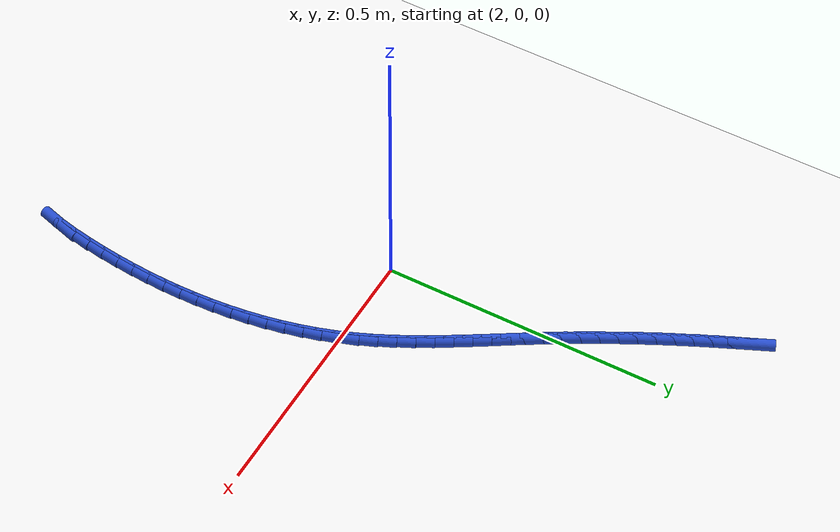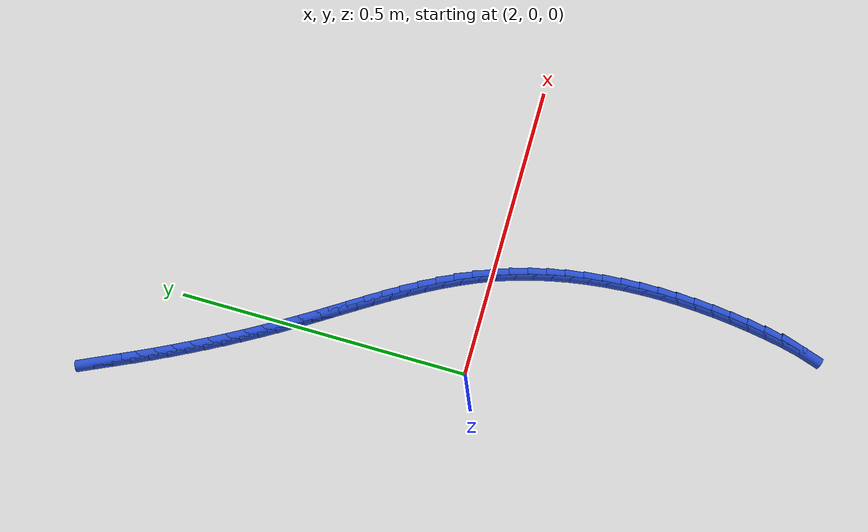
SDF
<sdf version="1.6">
 <world name="default">
  <model name="ground_plane">
   <static>1</static>
   <link name="link">
    <collision name="collision">
     <geometry><plane><normal>0 0 1</normal><size>100 100</size></plane></geometry>
     <surface><friction><ode><mu>100</mu><mu2>50</mu2></ode></friction></surface>
    </collision>
    <visual name="visual">
     <cast_shadows>0</cast_shadows>
     <geometry><plane><normal>0 0 1</normal><size>100 100</size></plane></geometry>
     <material>
      <script><uri>file://media/materials/scripts/gazebo.material</uri><name>Gazebo/WhiteGlow</name></script>
     </material>
    </visual>
   </link>
  </model>
  <model name="line">
   <link name="link_101">
    <pose>1.8529128987303833 0.6023524551765541 0.01 0 1.57 -1.141364116093518</pose>
    <collision name="collision">
     <geometry><cylinder><radius>0.01</radius><length>0.08</length></cylinder></geometry>
    </collision>
    <visual name="visual">
     <material>
      <script><name>Gazebo/Blue</name><uri>file://media/materials/scripts/gazebo.material</uri></script>
     </material>
     <geometry><cylinder><radius>0.01</radius><length>0.08</length></cylinder></geometry>
    </visual>
   </link>
   <link name="link_102">
    <pose>1.865972246120394 0.5738344859261233 0.01 0 1.57 -1.1388401700489124</pose>
    <collision name="collision">
     <geometry><cylinder><radius>0.01</radius><length>0.08</length></cylinder></geometry>
    </collision>
    <visual name="visual">
     <material>
      <script><name>Gazebo/Blue</name><uri>file://media/materials/scripts/gazebo.material</uri></script>
     </material>
     <geometry><cylinder><radius>0.01</radius><length>0.08</length></cylinder></geometry>
    </visual>
   </link>
   <link name="link_103">
    <pose>1.879097686817881 0.5453622430813385 0.01 0 1.57 -1.1290095653424908</pose>
    <collision name="collision">
     <geometry><cylinder><radius>0.01</radius><length>0.08</length></cylinder></geometry>
    </collision>
    <visual name="visual">
     <material>
      <script><name>Gazebo/Blue</name><uri>file://media/materials/scripts/gazebo.material</uri></script>
     </material>
     <geometry><cylinder><radius>0.01</radius><length>0.08</length></cylinder></geometry>
    </visual>
   </link>
   <link name="link_104">
    <pose>1.8924850723764892 0.5170570160560193 0.01 0 1.57 -1.1171066864794945</pose>
    <collision name="collision">
     <geometry><cylinder><radius>0.01</radius><length>0.08</length></cylinder></geometry>
    </collision>
    <visual name="visual">
     <material>
      <script><name>Gazebo/Blue</name><uri>file://media/materials/scripts/gazebo.material</uri></script>
     </material>
     <geometry><cylinder><radius>0.01</radius><length>0.08</length></cylinder></geometry>
    </visual>
   </link>
   <link name="link_105">
    <pose>1.9061917961281296 0.48894722150198777 0.01 0 1.57 -1.1051152801172501</pose>
    <collision name="collision">
     <geometry><cylinder><radius>0.01</radius><length>0.08</length></cylinder></geometry>
    </collision>
    <visual name="visual">
     <material>
      <script><name>Gazebo/Blue</name><uri>file://media/materials/scripts/gazebo.material</uri></script>
     </material>
     <geometry><cylinder><radius>0.01</radius><length>0.08</length></cylinder></geometry>
    </visual>
   </link>
   <link name="link_106">
    <pose>1.9202232504300774 0.46102639570007026 0.01 0 1.57 -1.0930515715977234</pose>
    <collision name="collision">
     <geometry><cylinder><radius>0.01</radius><length>0.08</length></cylinder></geometry>
    </collision>
    <visual name="visual">
     <material>
      <script><name>Gazebo/Blue</name><uri>file://media/materials/scripts/gazebo.material</uri></script>
     </material>
     <geometry><cylinder><radius>0.01</radius><length>0.08</length></cylinder></geometry>
    </visual>
   </link>
   <link name="link_107">
    <pose>1.9345847346326552 0.43328801254539867 0.01 0 1.57 -1.0809285110218767</pose>
    <collision name="collision">
     <geometry><cylinder><radius>0.01</radius><length>0.08</length></cylinder></geometry>
    </collision>
    <visual name="visual">
     <material>
      <script><name>Gazebo/Blue</name><uri>file://media/materials/scripts/gazebo.material</uri></script>
     </material>
     <geometry><cylinder><radius>0.01</radius><length>0.08</length></cylinder></geometry>
    </visual>
   </link>
   <link name="link_108">
    <pose>1.9492815480861878 0.40572554593310467 0.01 0 1.57 -1.068759253756185</pose>
    <collision name="collision">
     <geometry><cylinder><radius>0.01</radius><length>0.08</length></cylinder></geometry>
    </collision>
    <visual name="visual">
     <material>
      <script><name>Gazebo/Blue</name><uri>file://media/materials/scripts/gazebo.material</uri></script>
     </material>
     <geometry><cylinder><radius>0.01</radius><length>0.08</length></cylinder></geometry>
    </visual>
   </link>
   <link name="link_109">
    <pose>1.9643189901409983 0.3783324697583209 0.01 0 1.57 -1.0565571017413697</pose>
    <collision name="collision">
     <geometry><cylinder><radius>0.01</radius><length>0.08</length></cylinder></geometry>
    </collision>
    <visual name="visual">
     <material>
      <script><name>Gazebo/Blue</name><uri>file://media/materials/scripts/gazebo.material</uri></script>
     </material>
     <geometry><cylinder><radius>0.01</radius><length>0.08</length></cylinder></geometry>
    </visual>
   </link>
   <link name="link_110">
    <pose>1.9797023601474097 0.3511022579161794 0.01 0 1.57 -1.0443354432863359</pose>
    <collision name="collision">
     <geometry><cylinder><radius>0.01</radius><length>0.08</length></cylinder></geometry>
    </collision>
    <visual name="visual">
     <material>
      <script><name>Gazebo/Blue</name><uri>file://media/materials/scripts/gazebo.material</uri></script>
     </material>
     <geometry><cylinder><radius>0.01</radius><length>0.08</length></cylinder></geometry>
    </visual>
   </link>
   <link name="link_111">
    <pose>1.9954369574557476 0.32402838430181186 0.01 0 1.57 -1.0321076920001682</pose>
    <collision name="collision">
     <geometry><cylinder><radius>0.01</radius><length>0.08</length></cylinder></geometry>
    </collision>
    <visual name="visual">
     <material>
      <script><name>Gazebo/Blue</name><uri>file://media/materials/scripts/gazebo.material</uri></script>
     </material>
     <geometry><cylinder><radius>0.01</radius><length>0.08</length></cylinder></geometry>
    </visual>
   </link>
   <link name="link_112">
    <pose>2.0115280814163343 0.29710432281035 0.01 0 1.57 -1.020448550593419</pose>
    <collision name="collision">
     <geometry><cylinder><radius>0.01</radius><length>0.08</length></cylinder></geometry>
    </collision>
    <visual name="visual">
     <material>
      <script><name>Gazebo/Blue</name><uri>file://media/materials/scripts/gazebo.material</uri></script>
     </material>
     <geometry><cylinder><radius>0.01</radius><length>0.08</length></cylinder></geometry>
    </visual>
   </link>
   <link name="link_113">
    <pose>2.027964035992118 0.27031751057428 0.01 0 1.57 -1.0129894860063706</pose>
    <collision name="collision">
     <geometry><cylinder><radius>0.01</radius><length>0.08</length></cylinder></geometry>
    </collision>
    <visual name="visual">
     <material>
      <script><name>Gazebo/Blue</name><uri>file://media/materials/scripts/gazebo.material</uri></script>
     </material>
     <geometry><cylinder><radius>0.01</radius><length>0.08</length></cylinder></geometry>
    </visual>
   </link>
   <link name="link_114">
    <pose>2.0446229191994627 0.24361623956704379 0.01 0 1.57 -1.0111452794310627</pose>
    <collision name="collision">
     <geometry><cylinder><radius>0.01</radius><length>0.08</length></cylinder></geometry>
    </collision>
    <visual name="visual">
     <material>
      <script><name>Gazebo/Blue</name><uri>file://media/materials/scripts/gazebo.material</uri></script>
     </material>
     <geometry><cylinder><radius>0.01</radius><length>0.08</length></cylinder></geometry>
    </visual>
   </link>
   <link name="link_115">
    <pose>2.061338876639845 0.2169331898615979 0.01 0 1.57 -1.0149065328973785</pose>
    <collision name="collision">
     <geometry><cylinder><radius>0.01</radius><length>0.08</length></cylinder></geometry>
    </collision>
    <visual name="visual">
     <material>
      <script><name>Gazebo/Blue</name><uri>file://media/materials/scripts/gazebo.material</uri></script>
     </material>
     <geometry><cylinder><radius>0.01</radius><length>0.08</length></cylinder></geometry>
    </visual>
   </link>
   <link name="link_116">
    <pose>2.077945939758117 0.19020100098245957 0.01 0 1.57 -1.0242923384345723</pose>
    <collision name="collision">
     <geometry><cylinder><radius>0.01</radius><length>0.08</length></cylinder></geometry>
    </collision>
    <visual name="visual">
     <material>
      <script><name>Gazebo/Blue</name><uri>file://media/materials/scripts/gazebo.material</uri></script>
     </material>
     <geometry><cylinder><radius>0.01</radius><length>0.08</length></cylinder></geometry>
    </visual>
   </link>
   <link name="link_117">
    <pose>2.0942781399991306 0.1633523124541449 0.01 0 1.57 -1.039350717036252</pose>
    <collision name="collision">
     <geometry><cylinder><radius>0.01</radius><length>0.08</length></cylinder></geometry>
    </collision>
    <visual name="visual">
     <material>
      <script><name>Gazebo/Blue</name><uri>file://media/materials/scripts/gazebo.material</uri></script>
     </material>
     <geometry><cylinder><radius>0.01</radius><length>0.08</length></cylinder></geometry>
    </visual>
   </link>
   <link name="link_118">
    <pose>2.1101695088077372 0.1363197638011704 0.01 0 1.57 -1.060150149255341</pose>
    <collision name="collision">
     <geometry><cylinder><radius>0.01</radius><length>0.08</length></cylinder></geometry>
    </collision>
    <visual name="visual">
     <material>
      <script><name>Gazebo/Blue</name><uri>file://media/materials/scripts/gazebo.material</uri></script>
     </material>
     <geometry><cylinder><radius>0.01</radius><length>0.08</length></cylinder></geometry>
    </visual>
   </link>
   <link name="link_119">
    <pose>2.1254540776287905 0.10903599454805236 0.01 0 1.57 -1.0867654029407574</pose>
    <collision name="collision">
     <geometry><cylinder><radius>0.01</radius><length>0.08</length></cylinder></geometry>
    </collision>
    <visual name="visual">
     <material>
      <script><name>Gazebo/Blue</name><uri>file://media/materials/scripts/gazebo.material</uri></script>
     </material>
     <geometry><cylinder><radius>0.01</radius><length>0.08</length></cylinder></geometry>
    </visual>
   </link>
   <link name="link_120">
    <pose>2.139965877907141 0.08143364421930793 0.01 0 1.57 -1.1192569656280482</pose>
    <collision name="collision">
     <geometry><cylinder><radius>0.01</radius><length>0.08</length></cylinder></geometry>
    </collision>
    <visual name="visual">
     <material>
      <script><name>Gazebo/Blue</name><uri>file://media/materials/scripts/gazebo.material</uri></script>
     </material>
     <geometry><cylinder><radius>0.01</radius><length>0.08</length></cylinder></geometry>
    </visual>
   </link>
   <link name="link_121">
    <pose>2.1535389410876413 0.053445352339453425 0.01 0 1.57 -1.157643620109091</pose>
    <collision name="collision">
     <geometry><cylinder><radius>0.01</radius><length>0.08</length></cylinder></geometry>
    </collision>
    <visual name="visual">
     <material>
      <script><name>Gazebo/Blue</name><uri>file://media/materials/scripts/gazebo.material</uri></script>
     </material>
     <geometry><cylinder><radius>0.01</radius><length>0.08</length></cylinder></geometry>
    </visual>
   </link>
   <link name="link_122">
    <pose>2.1660072986151437 0.02500375843300525 0.01 0 1.57 -1.2016796213583572</pose>
    <collision name="collision">
     <geometry><cylinder><radius>0.01</radius><length>0.08</length></cylinder></geometry>
    </collision>
    <visual name="visual">
     <material>
      <script><name>Gazebo/Blue</name><uri>file://media/materials/scripts/gazebo.material</uri></script>
     </material>
     <geometry><cylinder><radius>0.01</radius><length>0.08</length></cylinder></geometry>
    </visual>
   </link>
   <link name="link_123">
    <pose>2.1772101151053347 -0.003955511820750343 0.01 0 1.57 -1.2475052086371163</pose>
    <collision name="collision">
     <geometry><cylinder><radius>0.01</radius><length>0.08</length></cylinder></geometry>
    </collision>
    <visual name="visual">
     <material>
      <script><name>Gazebo/Blue</name><uri>file://media/materials/scripts/gazebo.material</uri></script>
     </material>
     <geometry><cylinder><radius>0.01</radius><length>0.08</length></cylinder></geometry>
    </visual>
   </link>
   <link name="link_124">
    <pose>2.187088035667576 -0.03343779779707491 0.01 0 1.57 -1.291641736298689</pose>
    <collision name="collision">
     <geometry><cylinder><radius>0.01</radius><length>0.08</length></cylinder></geometry>
    </collision>
    <visual name="visual">
     <material>
      <script><name>Gazebo/Blue</name><uri>file://media/materials/scripts/gazebo.material</uri></script>
     </material>
     <geometry><cylinder><radius>0.01</radius><length>0.08</length></cylinder></geometry>
    </visual>
   </link>
   <link name="link_125">
    <pose>2.1956747480900187 -0.06339431251385944 0.01 0 1.57 -1.333961834632966</pose>
    <collision name="collision">
     <geometry><cylinder><radius>0.01</radius><length>0.08</length></cylinder></geometry>
    </collision>
    <visual name="visual">
     <material>
      <script><name>Gazebo/Blue</name><uri>file://media/materials/scripts/gazebo.material</uri></script>
     </material>
     <geometry><cylinder><radius>0.01</radius><length>0.08</length></cylinder></geometry>
    </visual>
   </link>
   <link name="link_126">
    <pose>2.2030073817811613 -0.09377426687151873 0.01 0 1.57 -1.3744902365158267</pose>
    <collision name="collision">
     <geometry><cylinder><radius>0.01</radius><length>0.08</length></cylinder></geometry>
    </collision>
    <visual name="visual">
     <material>
      <script><name>Gazebo/Blue</name><uri>file://media/materials/scripts/gazebo.material</uri></script>
     </material>
     <geometry><cylinder><radius>0.01</radius><length>0.08</length></cylinder></geometry>
    </visual>
   </link>
   <link name="link_127">
    <pose>2.209123066149503 -0.12452687177047013 0.01 0 1.57 -1.4132724327213153</pose>
    <collision name="collision">
     <geometry><cylinder><radius>0.01</radius><length>0.08</length></cylinder></geometry>
    </collision>
    <visual name="visual">
     <material>
      <script><name>Gazebo/Blue</name><uri>file://media/materials/scripts/gazebo.material</uri></script>
     </material>
     <geometry><cylinder><radius>0.01</radius><length>0.08</length></cylinder></geometry>
    </visual>
   </link>
   <link name="link_128">
    <pose>2.2140589306035423 -0.15560133811113017 0.01 0 1.57 -1.4503702756725585</pose>
    <collision name="collision">
     <geometry><cylinder><radius>0.01</radius><length>0.08</length></cylinder></geometry>
    </collision>
    <visual name="visual">
     <material>
      <script><name>Gazebo/Blue</name><uri>file://media/materials/scripts/gazebo.material</uri></script>
     </material>
     <geometry><cylinder><radius>0.01</radius><length>0.08</length></cylinder></geometry>
    </visual>
   </link>
   <link name="link_129">
    <pose>2.2178521045517807 -0.1869468767939153 0.01 0 1.57 -1.4858580515915378</pose>
    <collision name="collision">
     <geometry><cylinder><radius>0.01</radius><length>0.08</length></cylinder></geometry>
    </collision>
    <visual name="visual">
     <material>
      <script><name>Gazebo/Blue</name><uri>file://media/materials/scripts/gazebo.material</uri></script>
     </material>
     <geometry><cylinder><radius>0.01</radius><length>0.08</length></cylinder></geometry>
    </visual>
   </link>
   <link name="link_130">
    <pose>2.2205397174027164 -0.21851269871924223 0.01 0 1.57 -1.519819101955689</pose>
    <collision name="collision">
     <geometry><cylinder><radius>0.01</radius><length>0.08</length></cylinder></geometry>
    </collision>
    <visual name="visual">
     <material>
      <script><name>Gazebo/Blue</name><uri>file://media/materials/scripts/gazebo.material</uri></script>
     </material>
     <geometry><cylinder><radius>0.01</radius><length>0.08</length></cylinder></geometry>
    </visual>
   </link>
   <link name="link_131">
    <pose>2.222158898564848 -0.25024801478752723 0.01 0 1.57 -1.5523430160130929</pose>
    <collision name="collision">
     <geometry><cylinder><radius>0.01</radius><length>0.08</length></cylinder></geometry>
    </collision>
    <visual name="visual">
     <material>
      <script><name>Gazebo/Blue</name><uri>file://media/materials/scripts/gazebo.material</uri></script>
     </material>
     <geometry><cylinder><radius>0.01</radius><length>0.08</length></cylinder></geometry>
    </visual>
   </link>
   <link name="link_132">
    <pose>2.222746777446676 -0.2821020358991877 0.01 0 1.57 1.558069277926639</pose>
    <collision name="collision">
     <geometry><cylinder><radius>0.01</radius><length>0.08</length></cylinder></geometry>
    </collision>
    <visual name="visual">
     <material>
      <script><name>Gazebo/Blue</name><uri>file://media/materials/scripts/gazebo.material</uri></script>
     </material>
     <geometry><cylinder><radius>0.01</radius><length>0.08</length></cylinder></geometry>
    </visual>
   </link>
   <link name="link_133">
    <pose>2.2223404834566995 -0.3140239729546387 0.01 0 1.57 1.528136644136165</pose>
    <collision name="collision">
     <geometry><cylinder><radius>0.01</radius><length>0.08</length></cylinder></geometry>
    </collision>
    <visual name="visual">
     <material>
      <script><name>Gazebo/Blue</name><uri>file://media/materials/scripts/gazebo.material</uri></script>
     </material>
     <geometry><cylinder><radius>0.01</radius><length>0.08</length></cylinder></geometry>
    </visual>
   </link>
   <link name="link_134">
    <pose>2.220977146003418 -0.3459630368542973 0.01 0 1.57 1.499354953377853</pose>
    <collision name="collision">
     <geometry><cylinder><radius>0.01</radius><length>0.08</length></cylinder></geometry>
    </collision>
    <visual name="visual">
     <material>
      <script><name>Gazebo/Blue</name><uri>file://media/materials/scripts/gazebo.material</uri></script>
     </material>
     <geometry><cylinder><radius>0.01</radius><length>0.08</length></cylinder></geometry>
    </visual>
   </link>
   <link name="link_135">
    <pose>2.218693894495329 -0.3778684384985801 0.01 0 1.57 1.4716273661362071</pose>
    <collision name="collision">
     <geometry><cylinder><radius>0.01</radius><length>0.08</length></cylinder></geometry>
    </collision>
    <visual name="visual">
     <material>
      <script><name>Gazebo/Blue</name><uri>file://media/materials/scripts/gazebo.material</uri></script>
     </material>
     <geometry><cylinder><radius>0.01</radius><length>0.08</length></cylinder></geometry>
    </visual>
   </link>
   <link name="link_136">
    <pose>2.215527858340935 -0.40968938878790384 0.01 0 1.57 1.4448575453468067</pose>
    <collision name="collision">
     <geometry><cylinder><radius>0.01</radius><length>0.08</length></cylinder></geometry>
    </collision>
    <visual name="visual">
     <material>
      <script><name>Gazebo/Blue</name><uri>file://media/materials/scripts/gazebo.material</uri></script>
     </material>
     <geometry><cylinder><radius>0.01</radius><length>0.08</length></cylinder></geometry>
    </visual>
   </link>
   <link name="link_137">
    <pose>2.211516166948733 -0.44137509862268465 0.01 0 1.57 1.4189499272486783</pose>
    <collision name="collision">
     <geometry><cylinder><radius>0.01</radius><length>0.08</length></cylinder></geometry>
    </collision>
    <visual name="visual">
     <material>
      <script><name>Gazebo/Blue</name><uri>file://media/materials/scripts/gazebo.material</uri></script>
     </material>
     <geometry><cylinder><radius>0.01</radius><length>0.08</length></cylinder></geometry>
    </visual>
   </link>
   <link name="link_138">
    <pose>2.2066959497272234 -0.4728747789033393 0.01 0 1.57 1.3916033966082801</pose>
    <collision name="collision">
     <geometry><cylinder><radius>0.01</radius><length>0.08</length></cylinder></geometry>
    </collision>
    <visual name="visual">
     <material>
      <script><name>Gazebo/Blue</name><uri>file://media/materials/scripts/gazebo.material</uri></script>
     </material>
     <geometry><cylinder><radius>0.01</radius><length>0.08</length></cylinder></geometry>
    </visual>
   </link>
   <link name="link_139">
    <pose>2.20103824209621 -0.5041093876833239 0.01 0 1.57 1.3462117379007557</pose>
    <collision name="collision">
     <geometry><cylinder><radius>0.01</radius><length>0.08</length></cylinder></geometry>
    </collision>
    <visual name="visual">
     <material>
      <script><name>Gazebo/Blue</name><uri>file://media/materials/scripts/gazebo.material</uri></script>
     </material>
     <geometry><cylinder><radius>0.01</radius><length>0.08</length></cylinder></geometry>
    </visual>
   </link>
   <link name="link_140">
    <pose>2.1940290358765955 -0.534792544000256 0.01 0 1.57 1.2742630691142878</pose>
    <collision name="collision">
     <geometry><cylinder><radius>0.01</radius><length>0.08</length></cylinder></geometry>
    </collision>
    <visual name="visual">
     <material>
      <script><name>Gazebo/Blue</name><uri>file://media/materials/scripts/gazebo.material</uri></script>
     </material>
     <geometry><cylinder><radius>0.01</radius><length>0.08</length></cylinder></geometry>
    </visual>
   </link>
  </model>
 </world>
</sdf>
